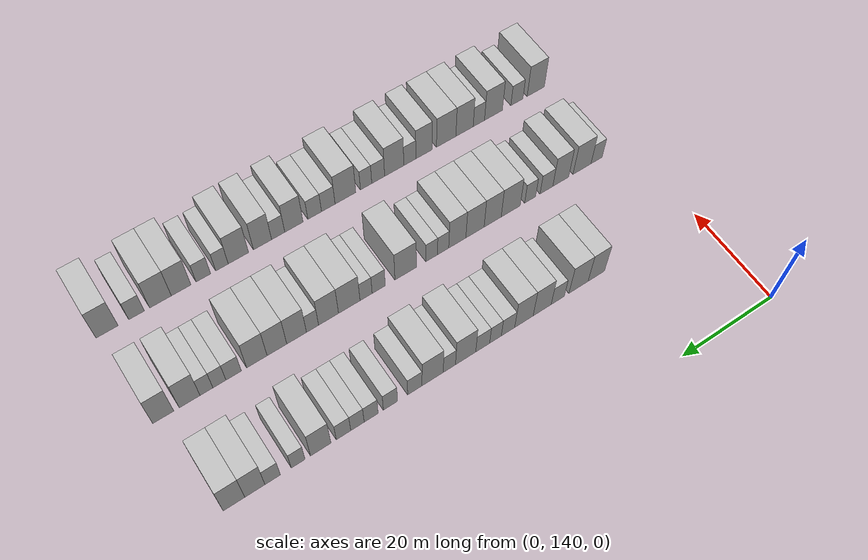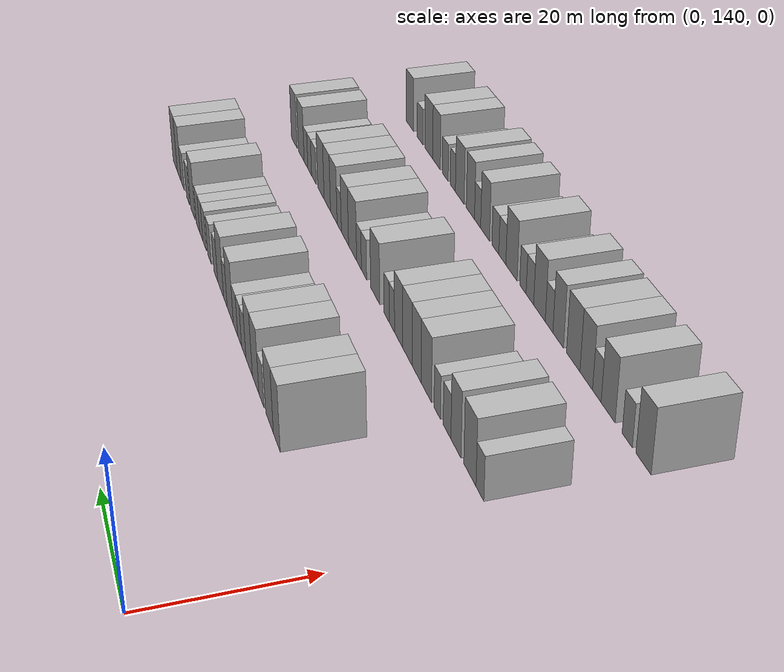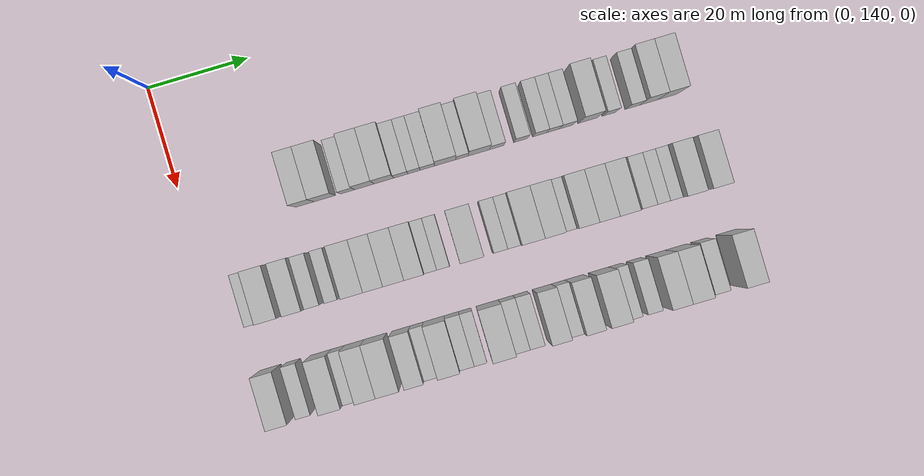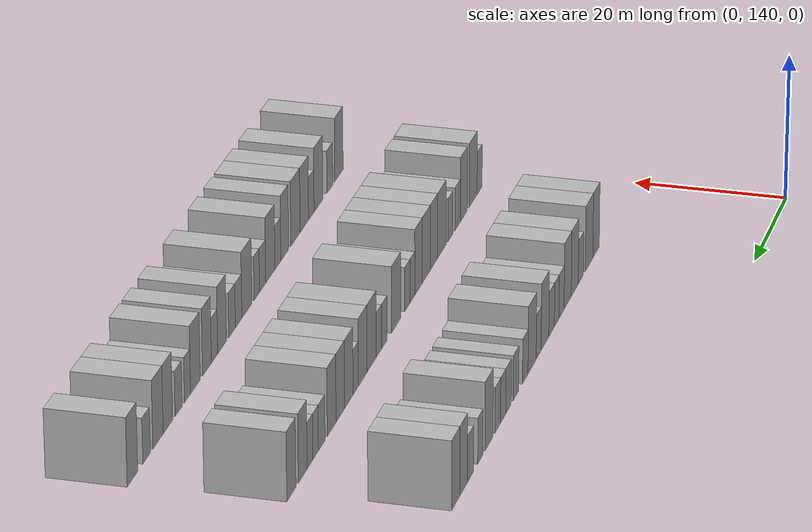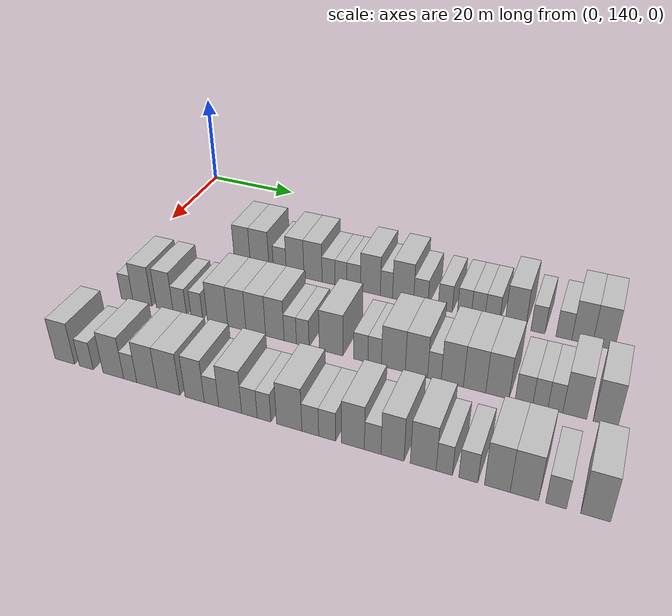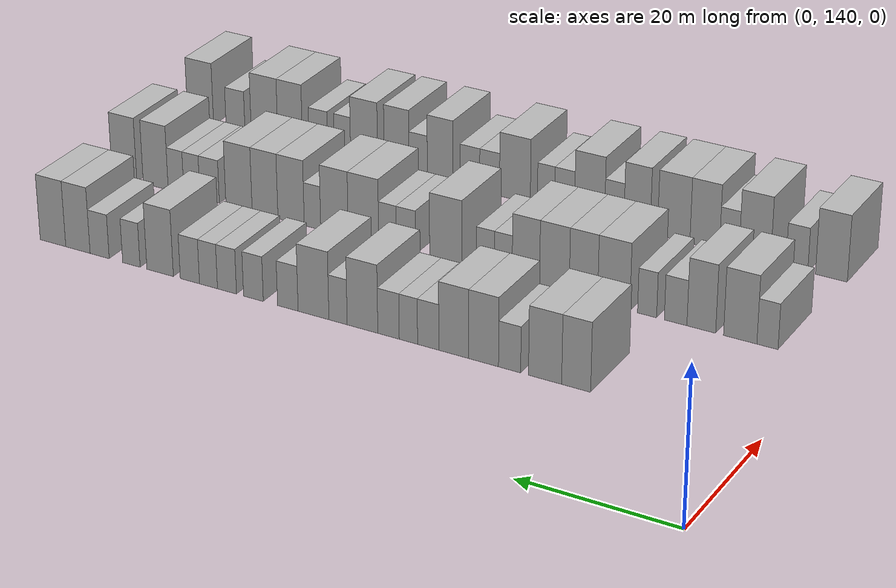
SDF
<sdf version="1.6">
 <world name="default">
  <model name="building_96">
   <static>1</static>
   <pose>25.0000 162.6394 0 0.000000 0.000000 0.000000</pose>
   <link name="link">
    <pose>0 0 4.50 0 0 0</pose>
    <collision name="collision"><geometry><box><size>10.0000 3.6520 9.0000</size></box></geometry></collision>
    <visual name="visual">
     <cast_shadows>0</cast_shadows>
     <geometry><box><size>10.0000 3.6520 9.0000</size></box></geometry>
     <material>
      <script>
       <uri>model://HANNAS_wall/materials/scripts</uri>
       <uri>model://HANNAS_wall/materials/textures</uri>
       <name>vrc/HANNAS_wall</name>
      </script>
     </material>
    </visual>
   </link>
  </model>
  <model name="building_97">
   <static>1</static>
   <pose>25.0000 166.5717 0 0.000000 0.000000 0.000000</pose>
   <link name="link">
    <pose>0 0 4.50 0 0 0</pose>
    <collision name="collision"><geometry><box><size>10.0000 4.2125 9.0000</size></box></geometry></collision>
    <visual name="visual">
     <cast_shadows>0</cast_shadows>
     <geometry><box><size>10.0000 4.2125 9.0000</size></box></geometry>
     <material>
      <script>
       <uri>model://HANNAS_wall/materials/scripts</uri>
       <uri>model://HANNAS_wall/materials/textures</uri>
       <name>vrc/HANNAS_wall</name>
      </script>
     </material>
    </visual>
   </link>
  </model>
  <model name="building_98">
   <static>1</static>
   <pose>25.0000 171.1045 0 0.000000 0.000000 0.000000</pose>
   <link name="link">
    <pose>0 0 3.00 0 0 0</pose>
    <collision name="collision"><geometry><box><size>10.0000 2.8531 6.0000</size></box></geometry></collision>
    <visual name="visual">
     <cast_shadows>0</cast_shadows>
     <geometry><box><size>10.0000 2.8531 6.0000</size></box></geometry>
     <material>
      <script>
       <uri>model://HANNAS_wall/materials/scripts</uri>
       <uri>model://HANNAS_wall/materials/textures</uri>
       <name>vrc/HANNAS_wall</name>
      </script>
     </material>
    </visual>
   </link>
  </model>
  <model name="building_99">
   <static>1</static>
   <pose>25.0000 174.4655 0 0.000000 0.000000 0.000000</pose>
   <link name="link">
    <pose>0 0 4.50 0 0 0</pose>
    <collision name="collision"><geometry><box><size>10.0000 3.8689 9.0000</size></box></geometry></collision>
    <visual name="visual">
     <cast_shadows>0</cast_shadows>
     <geometry><box><size>10.0000 3.8689 9.0000</size></box></geometry>
     <material>
      <script>
       <uri>model://HANNAS_wall/materials/scripts</uri>
       <uri>model://HANNAS_wall/materials/textures</uri>
       <name>vrc/HANNAS_wall</name>
      </script>
     </material>
    </visual>
   </link>
  </model>
  <model name="building_100">
   <static>1</static>
   <pose>25.0000 178.3606 0 0.000000 0.000000 0.000000</pose>
   <link name="link">
    <pose>0 0 4.50 0 0 0</pose>
    <collision name="collision"><geometry><box><size>10.0000 3.9213 9.0000</size></box></geometry></collision>
    <visual name="visual">
     <cast_shadows>0</cast_shadows>
     <geometry><box><size>10.0000 3.9213 9.0000</size></box></geometry>
     <material>
      <script>
       <uri>model://HANNAS_wall/materials/scripts</uri>
       <uri>model://HANNAS_wall/materials/textures</uri>
       <name>vrc/HANNAS_wall</name>
      </script>
     </material>
    </visual>
   </link>
  </model>
  <model name="building_101">
   <static>1</static>
   <pose>25.0000 181.7256 0 0.000000 0.000000 0.000000</pose>
   <link name="link">
    <pose>0 0 3.00 0 0 0</pose>
    <collision name="collision"><geometry><box><size>10.0000 2.8085 6.0000</size></box></geometry></collision>
    <visual name="visual">
     <cast_shadows>0</cast_shadows>
     <geometry><box><size>10.0000 2.8085 6.0000</size></box></geometry>
     <material>
      <script>
       <uri>model://HANNAS_wall/materials/scripts</uri>
       <uri>model://HANNAS_wall/materials/textures</uri>
       <name>vrc/HANNAS_wall</name>
      </script>
     </material>
    </visual>
   </link>
  </model>
  <model name="building_102">
   <static>1</static>
   <pose>25.0000 184.3466 0 0.000000 0.000000 0.000000</pose>
   <link name="link">
    <pose>0 0 3.00 0 0 0</pose>
    <collision name="collision"><geometry><box><size>10.0000 2.4336 6.0000</size></box></geometry></collision>
    <visual name="visual">
     <cast_shadows>0</cast_shadows>
     <geometry><box><size>10.0000 2.4336 6.0000</size></box></geometry>
     <material>
      <script>
       <uri>model://HANNAS_wall/materials/scripts</uri>
       <uri>model://HANNAS_wall/materials/textures</uri>
       <name>vrc/HANNAS_wall</name>
      </script>
     </material>
    </visual>
   </link>
  </model>
  <model name="building_103">
   <static>1</static>
   <pose>25.0000 187.0043 0 0.000000 0.000000 0.000000</pose>
   <link name="link">
    <pose>0 0 3.00 0 0 0</pose>
    <collision name="collision"><geometry><box><size>10.0000 2.8817 6.0000</size></box></geometry></collision>
    <visual name="visual">
     <cast_shadows>0</cast_shadows>
     <geometry><box><size>10.0000 2.8817 6.0000</size></box></geometry>
     <material>
      <script>
       <uri>model://HANNAS_wall/materials/scripts</uri>
       <uri>model://HANNAS_wall/materials/textures</uri>
       <name>vrc/HANNAS_wall</name>
      </script>
     </material>
    </visual>
   </link>
  </model>
  <model name="building_104">
   <static>1</static>
   <pose>25.0000 190.5175 0 0.000000 0.000000 0.000000</pose>
   <link name="link">
    <pose>0 0 4.50 0 0 0</pose>
    <collision name="collision"><geometry><box><size>10.0000 4.1447 9.0000</size></box></geometry></collision>
    <visual name="visual">
     <cast_shadows>0</cast_shadows>
     <geometry><box><size>10.0000 4.1447 9.0000</size></box></geometry>
     <material>
      <script>
       <uri>model://HANNAS_wall/materials/scripts</uri>
       <uri>model://HANNAS_wall/materials/textures</uri>
       <name>vrc/HANNAS_wall</name>
      </script>
     </material>
    </visual>
   </link>
  </model>
  <model name="building_105">
   <static>1</static>
   <pose>25.0000 193.8384 0 0.000000 0.000000 0.000000</pose>
   <link name="link">
    <pose>0 0 3.00 0 0 0</pose>
    <collision name="collision"><geometry><box><size>10.0000 2.4971 6.0000</size></box></geometry></collision>
    <visual name="visual">
     <cast_shadows>0</cast_shadows>
     <geometry><box><size>10.0000 2.4971 6.0000</size></box></geometry>
     <material>
      <script>
       <uri>model://HANNAS_wall/materials/scripts</uri>
       <uri>model://HANNAS_wall/materials/textures</uri>
       <name>vrc/HANNAS_wall</name>
      </script>
     </material>
    </visual>
   </link>
  </model>
  <model name="building_106">
   <static>1</static>
   <pose>25.0000 197.2086 0 0.000000 0.000000 0.000000</pose>
   <link name="link">
    <pose>0 0 4.50 0 0 0</pose>
    <collision name="collision"><geometry><box><size>10.0000 4.2434 9.0000</size></box></geometry></collision>
    <visual name="visual">
     <cast_shadows>0</cast_shadows>
     <geometry><box><size>10.0000 4.2434 9.0000</size></box></geometry>
     <material>
      <script>
       <uri>model://HANNAS_wall/materials/scripts</uri>
       <uri>model://HANNAS_wall/materials/textures</uri>
       <name>vrc/HANNAS_wall</name>
      </script>
     </material>
    </visual>
   </link>
  </model>
  <model name="building_107">
   <static>1</static>
   <pose>25.0000 200.7598 0 0.000000 0.000000 0.000000</pose>
   <link name="link">
    <pose>0 0 3.00 0 0 0</pose>
    <collision name="collision"><geometry><box><size>10.0000 2.8590 6.0000</size></box></geometry></collision>
    <visual name="visual">
     <cast_shadows>0</cast_shadows>
     <geometry><box><size>10.0000 2.8590 6.0000</size></box></geometry>
     <material>
      <script>
       <uri>model://HANNAS_wall/materials/scripts</uri>
       <uri>model://HANNAS_wall/materials/textures</uri>
       <name>vrc/HANNAS_wall</name>
      </script>
     </material>
    </visual>
   </link>
  </model>
  <model name="building_108">
   <static>1</static>
   <pose>25.0000 205.5789 0 0.000000 0.000000 0.000000</pose>
   <link name="link">
    <pose>0 0 3.00 0 0 0</pose>
    <collision name="collision"><geometry><box><size>10.0000 2.7793 6.0000</size></box></geometry></collision>
    <visual name="visual">
     <cast_shadows>0</cast_shadows>
     <geometry><box><size>10.0000 2.7793 6.0000</size></box></geometry>
     <material>
      <script>
       <uri>model://HANNAS_wall/materials/scripts</uri>
       <uri>model://HANNAS_wall/materials/textures</uri>
       <name>vrc/HANNAS_wall</name>
      </script>
     </material>
    </visual>
   </link>
  </model>
  <model name="building_109">
   <static>1</static>
   <pose>25.0000 209.3211 0 0.000000 0.000000 0.000000</pose>
   <link name="link">
    <pose>0 0 3.00 0 0 0</pose>
    <collision name="collision"><geometry><box><size>10.0000 2.7051 6.0000</size></box></geometry></collision>
    <visual name="visual">
     <cast_shadows>0</cast_shadows>
     <geometry><box><size>10.0000 2.7051 6.0000</size></box></geometry>
     <material>
      <script>
       <uri>model://HANNAS_wall/materials/scripts</uri>
       <uri>model://HANNAS_wall/materials/textures</uri>
       <name>vrc/HANNAS_wall</name>
      </script>
     </material>
    </visual>
   </link>
  </model>
  <model name="building_110">
   <static>1</static>
   <pose>25.0000 211.9620 0 0.000000 0.000000 0.000000</pose>
   <link name="link">
    <pose>0 0 3.00 0 0 0</pose>
    <collision name="collision"><geometry><box><size>10.0000 2.5768 6.0000</size></box></geometry></collision>
    <visual name="visual">
     <cast_shadows>0</cast_shadows>
     <geometry><box><size>10.0000 2.5768 6.0000</size></box></geometry>
     <material>
      <script>
       <uri>model://HANNAS_wall/materials/scripts</uri>
       <uri>model://HANNAS_wall/materials/textures</uri>
       <name>vrc/HANNAS_wall</name>
      </script>
     </material>
    </visual>
   </link>
  </model>
  <model name="building_111">
   <static>1</static>
   <pose>25.0000 214.6335 0 0.000000 0.000000 0.000000</pose>
   <link name="link">
    <pose>0 0 3.00 0 0 0</pose>
    <collision name="collision"><geometry><box><size>10.0000 2.7661 6.0000</size></box></geometry></collision>
    <visual name="visual">
     <cast_shadows>0</cast_shadows>
     <geometry><box><size>10.0000 2.7661 6.0000</size></box></geometry>
     <material>
      <script>
       <uri>model://HANNAS_wall/materials/scripts</uri>
       <uri>model://HANNAS_wall/materials/textures</uri>
       <name>vrc/HANNAS_wall</name>
      </script>
     </material>
    </visual>
   </link>
  </model>
  <model name="building_112">
   <static>1</static>
   <pose>25.0000 218.9441 0 0.000000 0.000000 0.000000</pose>
   <link name="link">
    <pose>0 0 4.50 0 0 0</pose>
    <collision name="collision"><geometry><box><size>10.0000 3.8553 9.0000</size></box></geometry></collision>
    <visual name="visual">
     <cast_shadows>0</cast_shadows>
     <geometry><box><size>10.0000 3.8553 9.0000</size></box></geometry>
     <material>
      <script>
       <uri>model://HANNAS_wall/materials/scripts</uri>
       <uri>model://HANNAS_wall/materials/textures</uri>
       <name>vrc/HANNAS_wall</name>
      </script>
     </material>
    </visual>
   </link>
  </model>
  <model name="building_113">
   <static>1</static>
   <pose>25.0000 223.1543 0 0.000000 0.000000 0.000000</pose>
   <link name="link">
    <pose>0 0 3.00 0 0 0</pose>
    <collision name="collision"><geometry><box><size>10.0000 2.5650 6.0000</size></box></geometry></collision>
    <visual name="visual">
     <cast_shadows>0</cast_shadows>
     <geometry><box><size>10.0000 2.5650 6.0000</size></box></geometry>
     <material>
      <script>
       <uri>model://HANNAS_wall/materials/scripts</uri>
       <uri>model://HANNAS_wall/materials/textures</uri>
       <name>vrc/HANNAS_wall</name>
      </script>
     </material>
    </visual>
   </link>
  </model>
  <model name="building_114">
   <static>1</static>
   <pose>25.0000 227.8558 0 0.000000 0.000000 0.000000</pose>
   <link name="link">
    <pose>0 0 3.00 0 0 0</pose>
    <collision name="collision"><geometry><box><size>10.0000 2.8379 6.0000</size></box></geometry></collision>
    <visual name="visual">
     <cast_shadows>0</cast_shadows>
     <geometry><box><size>10.0000 2.8379 6.0000</size></box></geometry>
     <material>
      <script>
       <uri>model://HANNAS_wall/materials/scripts</uri>
       <uri>model://HANNAS_wall/materials/textures</uri>
       <name>vrc/HANNAS_wall</name>
      </script>
     </material>
    </visual>
   </link>
  </model>
  <model name="building_115">
   <static>1</static>
   <pose>25.0000 231.1045 0 0.000000 0.000000 0.000000</pose>
   <link name="link">
    <pose>0 0 4.50 0 0 0</pose>
    <collision name="collision"><geometry><box><size>10.0000 3.6596 9.0000</size></box></geometry></collision>
    <visual name="visual">
     <cast_shadows>0</cast_shadows>
     <geometry><box><size>10.0000 3.6596 9.0000</size></box></geometry>
     <material>
      <script>
       <uri>model://HANNAS_wall/materials/scripts</uri>
       <uri>model://HANNAS_wall/materials/textures</uri>
       <name>vrc/HANNAS_wall</name>
      </script>
     </material>
    </visual>
   </link>
  </model>
  <model name="building_116">
   <static>1</static>
   <pose>25.0000 234.8668 0 0.000000 0.000000 0.000000</pose>
   <link name="link">
    <pose>0 0 4.50 0 0 0</pose>
    <collision name="collision"><geometry><box><size>10.0000 3.8649 9.0000</size></box></geometry></collision>
    <visual name="visual">
     <cast_shadows>0</cast_shadows>
     <geometry><box><size>10.0000 3.8649 9.0000</size></box></geometry>
     <material>
      <script>
       <uri>model://HANNAS_wall/materials/scripts</uri>
       <uri>model://HANNAS_wall/materials/textures</uri>
       <name>vrc/HANNAS_wall</name>
      </script>
     </material>
    </visual>
   </link>
  </model>
  <model name="building_208">
   <static>1</static>
   <pose>44.0000 147.5408 0 0.000000 0.000000 0.000000</pose>
   <link name="link">
    <pose>0 0 3.00 0 0 0</pose>
    <collision name="collision"><geometry><box><size>10.0000 2.6449 6.0000</size></box></geometry></collision>
    <visual name="visual">
     <cast_shadows>0</cast_shadows>
     <geometry><box><size>10.0000 2.6449 6.0000</size></box></geometry>
     <material>
      <script>
       <uri>model://HANNAS_wall/materials/scripts</uri>
       <uri>model://HANNAS_wall/materials/textures</uri>
       <name>vrc/HANNAS_wall</name>
      </script>
     </material>
    </visual>
   </link>
  </model>
  <model name="building_209">
   <static>1</static>
   <pose>44.0000 150.9653 0 0.000000 0.000000 0.000000</pose>
   <link name="link">
    <pose>0 0 4.50 0 0 0</pose>
    <collision name="collision"><geometry><box><size>10.0000 4.2041 9.0000</size></box></geometry></collision>
    <visual name="visual">
     <cast_shadows>0</cast_shadows>
     <geometry><box><size>10.0000 4.2041 9.0000</size></box></geometry>
     <material>
      <script>
       <uri>model://HANNAS_wall/materials/scripts</uri>
       <uri>model://HANNAS_wall/materials/textures</uri>
       <name>vrc/HANNAS_wall</name>
      </script>
     </material>
    </visual>
   </link>
  </model>
  <model name="building_210">
   <static>1</static>
   <pose>44.0000 155.9043 0 0.000000 0.000000 0.000000</pose>
   <link name="link">
    <pose>0 0 4.50 0 0 0</pose>
    <collision name="collision"><geometry><box><size>10.0000 3.6739 9.0000</size></box></geometry></collision>
    <visual name="visual">
     <cast_shadows>0</cast_shadows>
     <geometry><box><size>10.0000 3.6739 9.0000</size></box></geometry>
     <material>
      <script>
       <uri>model://HANNAS_wall/materials/scripts</uri>
       <uri>model://HANNAS_wall/materials/textures</uri>
       <name>vrc/HANNAS_wall</name>
      </script>
     </material>
    </visual>
   </link>
  </model>
  <model name="building_211">
   <static>1</static>
   <pose>44.0000 159.1957 0 0.000000 0.000000 0.000000</pose>
   <link name="link">
    <pose>0 0 3.00 0 0 0</pose>
    <collision name="collision"><geometry><box><size>10.0000 2.9090 6.0000</size></box></geometry></collision>
    <visual name="visual">
     <cast_shadows>0</cast_shadows>
     <geometry><box><size>10.0000 2.9090 6.0000</size></box></geometry>
     <material>
      <script>
       <uri>model://HANNAS_wall/materials/scripts</uri>
       <uri>model://HANNAS_wall/materials/textures</uri>
       <name>vrc/HANNAS_wall</name>
      </script>
     </material>
    </visual>
   </link>
  </model>
  <model name="building_212">
   <static>1</static>
   <pose>44.0000 162.8904 0 0.000000 0.000000 0.000000</pose>
   <link name="link">
    <pose>0 0 3.00 0 0 0</pose>
    <collision name="collision"><geometry><box><size>10.0000 2.4805 6.0000</size></box></geometry></collision>
    <visual name="visual">
     <cast_shadows>0</cast_shadows>
     <geometry><box><size>10.0000 2.4805 6.0000</size></box></geometry>
     <material>
      <script>
       <uri>model://HANNAS_wall/materials/scripts</uri>
       <uri>model://HANNAS_wall/materials/textures</uri>
       <name>vrc/HANNAS_wall</name>
      </script>
     </material>
    </visual>
   </link>
  </model>
  <model name="building_213">
   <static>1</static>
   <pose>44.0000 167.2576 0 0.000000 0.000000 0.000000</pose>
   <link name="link">
    <pose>0 0 4.50 0 0 0</pose>
    <collision name="collision"><geometry><box><size>10.0000 4.2539 9.0000</size></box></geometry></collision>
    <visual name="visual">
     <cast_shadows>0</cast_shadows>
     <geometry><box><size>10.0000 4.2539 9.0000</size></box></geometry>
     <material>
      <script>
       <uri>model://HANNAS_wall/materials/scripts</uri>
       <uri>model://HANNAS_wall/materials/textures</uri>
       <name>vrc/HANNAS_wall</name>
      </script>
     </material>
    </visual>
   </link>
  </model>
  <model name="building_214">
   <static>1</static>
   <pose>44.0000 171.2735 0 0.000000 0.000000 0.000000</pose>
   <link name="link">
    <pose>0 0 4.50 0 0 0</pose>
    <collision name="collision"><geometry><box><size>10.0000 3.7778 9.0000</size></box></geometry></collision>
    <visual name="visual">
     <cast_shadows>0</cast_shadows>
     <geometry><box><size>10.0000 3.7778 9.0000</size></box></geometry>
     <material>
      <script>
       <uri>model://HANNAS_wall/materials/scripts</uri>
       <uri>model://HANNAS_wall/materials/textures</uri>
       <name>vrc/HANNAS_wall</name>
      </script>
     </material>
    </visual>
   </link>
  </model>
  <model name="building_215">
   <static>1</static>
   <pose>44.0000 175.1547 0 0.000000 0.000000 0.000000</pose>
   <link name="link">
    <pose>0 0 4.50 0 0 0</pose>
    <collision name="collision"><geometry><box><size>10.0000 3.9847 9.0000</size></box></geometry></collision>
    <visual name="visual">
     <cast_shadows>0</cast_shadows>
     <geometry><box><size>10.0000 3.9847 9.0000</size></box></geometry>
     <material>
      <script>
       <uri>model://HANNAS_wall/materials/scripts</uri>
       <uri>model://HANNAS_wall/materials/textures</uri>
       <name>vrc/HANNAS_wall</name>
      </script>
     </material>
    </visual>
   </link>
  </model>
  <model name="building_216">
   <static>1</static>
   <pose>44.0000 179.0028 0 0.000000 0.000000 0.000000</pose>
   <link name="link">
    <pose>0 0 4.50 0 0 0</pose>
    <collision name="collision"><geometry><box><size>10.0000 3.7114 9.0000</size></box></geometry></collision>
    <visual name="visual">
     <cast_shadows>0</cast_shadows>
     <geometry><box><size>10.0000 3.7114 9.0000</size></box></geometry>
     <material>
      <script>
       <uri>model://HANNAS_wall/materials/scripts</uri>
       <uri>model://HANNAS_wall/materials/textures</uri>
       <name>vrc/HANNAS_wall</name>
      </script>
     </material>
    </visual>
   </link>
  </model>
  <model name="building_217">
   <static>1</static>
   <pose>44.0000 182.0700 0 0.000000 0.000000 0.000000</pose>
   <link name="link">
    <pose>0 0 3.00 0 0 0</pose>
    <collision name="collision"><geometry><box><size>10.0000 2.4230 6.0000</size></box></geometry></collision>
    <visual name="visual">
     <cast_shadows>0</cast_shadows>
     <geometry><box><size>10.0000 2.4230 6.0000</size></box></geometry>
     <material>
      <script>
       <uri>model://HANNAS_wall/materials/scripts</uri>
       <uri>model://HANNAS_wall/materials/textures</uri>
       <name>vrc/HANNAS_wall</name>
      </script>
     </material>
    </visual>
   </link>
  </model>
  <model name="building_218">
   <static>1</static>
   <pose>44.0000 184.5172 0 0.000000 0.000000 0.000000</pose>
   <link name="link">
    <pose>0 0 3.00 0 0 0</pose>
    <collision name="collision"><geometry><box><size>10.0000 2.4714 6.0000</size></box></geometry></collision>
    <visual name="visual">
     <cast_shadows>0</cast_shadows>
     <geometry><box><size>10.0000 2.4714 6.0000</size></box></geometry>
     <material>
      <script>
       <uri>model://HANNAS_wall/materials/scripts</uri>
       <uri>model://HANNAS_wall/materials/textures</uri>
       <name>vrc/HANNAS_wall</name>
      </script>
     </material>
    </visual>
   </link>
  </model>
  <model name="building_219">
   <static>1</static>
   <pose>44.0000 190.0004 0 0.000000 0.000000 0.000000</pose>
   <link name="link">
    <pose>0 0 4.50 0 0 0</pose>
    <collision name="collision"><geometry><box><size>10.0000 4.4950 9.0000</size></box></geometry></collision>
    <visual name="visual">
     <cast_shadows>0</cast_shadows>
     <geometry><box><size>10.0000 4.4950 9.0000</size></box></geometry>
     <material>
      <script>
       <uri>model://HANNAS_wall/materials/scripts</uri>
       <uri>model://HANNAS_wall/materials/textures</uri>
       <name>vrc/HANNAS_wall</name>
      </script>
     </material>
    </visual>
   </link>
  </model>
  <model name="building_220">
   <static>1</static>
   <pose>44.0000 195.6050 0 0.000000 0.000000 0.000000</pose>
   <link name="link">
    <pose>0 0 3.00 0 0 0</pose>
    <collision name="collision"><geometry><box><size>10.0000 2.7142 6.0000</size></box></geometry></collision>
    <visual name="visual">
     <cast_shadows>0</cast_shadows>
     <geometry><box><size>10.0000 2.7142 6.0000</size></box></geometry>
     <material>
      <script>
       <uri>model://HANNAS_wall/materials/scripts</uri>
       <uri>model://HANNAS_wall/materials/textures</uri>
       <name>vrc/HANNAS_wall</name>
      </script>
     </material>
    </visual>
   </link>
  </model>
  <model name="building_221">
   <static>1</static>
   <pose>44.0000 198.2042 0 0.000000 0.000000 0.000000</pose>
   <link name="link">
    <pose>0 0 3.00 0 0 0</pose>
    <collision name="collision"><geometry><box><size>10.0000 2.4843 6.0000</size></box></geometry></collision>
    <visual name="visual">
     <cast_shadows>0</cast_shadows>
     <geometry><box><size>10.0000 2.4843 6.0000</size></box></geometry>
     <material>
      <script>
       <uri>model://HANNAS_wall/materials/scripts</uri>
       <uri>model://HANNAS_wall/materials/textures</uri>
       <name>vrc/HANNAS_wall</name>
      </script>
     </material>
    </visual>
   </link>
  </model>
  <model name="building_222">
   <static>1</static>
   <pose>44.0000 201.6259 0 0.000000 0.000000 0.000000</pose>
   <link name="link">
    <pose>0 0 4.50 0 0 0</pose>
    <collision name="collision"><geometry><box><size>10.0000 4.3592 9.0000</size></box></geometry></collision>
    <visual name="visual">
     <cast_shadows>0</cast_shadows>
     <geometry><box><size>10.0000 4.3592 9.0000</size></box></geometry>
     <material>
      <script>
       <uri>model://HANNAS_wall/materials/scripts</uri>
       <uri>model://HANNAS_wall/materials/textures</uri>
       <name>vrc/HANNAS_wall</name>
      </script>
     </material>
    </visual>
   </link>
  </model>
  <model name="building_223">
   <static>1</static>
   <pose>44.0000 205.8047 0 0.000000 0.000000 0.000000</pose>
   <link name="link">
    <pose>0 0 4.50 0 0 0</pose>
    <collision name="collision"><geometry><box><size>10.0000 3.9984 9.0000</size></box></geometry></collision>
    <visual name="visual">
     <cast_shadows>0</cast_shadows>
     <geometry><box><size>10.0000 3.9984 9.0000</size></box></geometry>
     <material>
      <script>
       <uri>model://HANNAS_wall/materials/scripts</uri>
       <uri>model://HANNAS_wall/materials/textures</uri>
       <name>vrc/HANNAS_wall</name>
      </script>
     </material>
    </visual>
   </link>
  </model>
  <model name="building_224">
   <static>1</static>
   <pose>44.0000 209.0054 0 0.000000 0.000000 0.000000</pose>
   <link name="link">
    <pose>0 0 3.00 0 0 0</pose>
    <collision name="collision"><geometry><box><size>10.0000 2.4032 6.0000</size></box></geometry></collision>
    <visual name="visual">
     <cast_shadows>0</cast_shadows>
     <geometry><box><size>10.0000 2.4032 6.0000</size></box></geometry>
     <material>
      <script>
       <uri>model://HANNAS_wall/materials/scripts</uri>
       <uri>model://HANNAS_wall/materials/textures</uri>
       <name>vrc/HANNAS_wall</name>
      </script>
     </material>
    </visual>
   </link>
  </model>
  <model name="building_225">
   <static>1</static>
   <pose>44.0000 212.1458 0 0.000000 0.000000 0.000000</pose>
   <link name="link">
    <pose>0 0 4.50 0 0 0</pose>
    <collision name="collision"><geometry><box><size>10.0000 3.8777 9.0000</size></box></geometry></collision>
    <visual name="visual">
     <cast_shadows>0</cast_shadows>
     <geometry><box><size>10.0000 3.8777 9.0000</size></box></geometry>
     <material>
      <script>
       <uri>model://HANNAS_wall/materials/scripts</uri>
       <uri>model://HANNAS_wall/materials/textures</uri>
       <name>vrc/HANNAS_wall</name>
      </script>
     </material>
    </visual>
   </link>
  </model>
  <model name="building_226">
   <static>1</static>
   <pose>44.0000 216.0021 0 0.000000 0.000000 0.000000</pose>
   <link name="link">
    <pose>0 0 4.50 0 0 0</pose>
    <collision name="collision"><geometry><box><size>10.0000 3.8350 9.0000</size></box></geometry></collision>
    <visual name="visual">
     <cast_shadows>0</cast_shadows>
     <geometry><box><size>10.0000 3.8350 9.0000</size></box></geometry>
     <material>
      <script>
       <uri>model://HANNAS_wall/materials/scripts</uri>
       <uri>model://HANNAS_wall/materials/textures</uri>
       <name>vrc/HANNAS_wall</name>
      </script>
     </material>
    </visual>
   </link>
  </model>
  <model name="building_227">
   <static>1</static>
   <pose>44.0000 219.8885 0 0.000000 0.000000 0.000000</pose>
   <link name="link">
    <pose>0 0 4.50 0 0 0</pose>
    <collision name="collision"><geometry><box><size>10.0000 3.9378 9.0000</size></box></geometry></collision>
    <visual name="visual">
     <cast_shadows>0</cast_shadows>
     <geometry><box><size>10.0000 3.9378 9.0000</size></box></geometry>
     <material>
      <script>
       <uri>model://HANNAS_wall/materials/scripts</uri>
       <uri>model://HANNAS_wall/materials/textures</uri>
       <name>vrc/HANNAS_wall</name>
      </script>
     </material>
    </visual>
   </link>
  </model>
  <model name="building_228">
   <static>1</static>
   <pose>44.0000 224.3239 0 0.000000 0.000000 0.000000</pose>
   <link name="link">
    <pose>0 0 3.00 0 0 0</pose>
    <collision name="collision"><geometry><box><size>10.0000 2.9329 6.0000</size></box></geometry></collision>
    <visual name="visual">
     <cast_shadows>0</cast_shadows>
     <geometry><box><size>10.0000 2.9329 6.0000</size></box></geometry>
     <material>
      <script>
       <uri>model://HANNAS_wall/materials/scripts</uri>
       <uri>model://HANNAS_wall/materials/textures</uri>
       <name>vrc/HANNAS_wall</name>
      </script>
     </material>
    </visual>
   </link>
  </model>
  <model name="building_229">
   <static>1</static>
   <pose>44.0000 227.0180 0 0.000000 0.000000 0.000000</pose>
   <link name="link">
    <pose>0 0 3.00 0 0 0</pose>
    <collision name="collision"><geometry><box><size>10.0000 2.4553 6.0000</size></box></geometry></collision>
    <visual name="visual">
     <cast_shadows>0</cast_shadows>
     <geometry><box><size>10.0000 2.4553 6.0000</size></box></geometry>
     <material>
      <script>
       <uri>model://HANNAS_wall/materials/scripts</uri>
       <uri>model://HANNAS_wall/materials/textures</uri>
       <name>vrc/HANNAS_wall</name>
      </script>
     </material>
    </visual>
   </link>
  </model>
  <model name="building_230">
   <static>1</static>
   <pose>44.0000 229.4484 0 0.000000 0.000000 0.000000</pose>
   <link name="link">
    <pose>0 0 3.00 0 0 0</pose>
    <collision name="collision"><geometry><box><size>10.0000 2.4055 6.0000</size></box></geometry></collision>
    <visual name="visual">
     <cast_shadows>0</cast_shadows>
     <geometry><box><size>10.0000 2.4055 6.0000</size></box></geometry>
     <material>
      <script>
       <uri>model://HANNAS_wall/materials/scripts</uri>
       <uri>model://HANNAS_wall/materials/textures</uri>
       <name>vrc/HANNAS_wall</name>
      </script>
     </material>
    </visual>
   </link>
  </model>
  <model name="building_231">
   <static>1</static>
   <pose>44.0000 232.5806 0 0.000000 0.000000 0.000000</pose>
   <link name="link">
    <pose>0 0 4.50 0 0 0</pose>
    <collision name="collision"><geometry><box><size>10.0000 3.8588 9.0000</size></box></geometry></collision>
    <visual name="visual">
     <cast_shadows>0</cast_shadows>
     <geometry><box><size>10.0000 3.8588 9.0000</size></box></geometry>
     <material>
      <script>
       <uri>model://HANNAS_wall/materials/scripts</uri>
       <uri>model://HANNAS_wall/materials/textures</uri>
       <name>vrc/HANNAS_wall</name>
      </script>
     </material>
    </visual>
   </link>
  </model>
  <model name="building_232">
   <static>1</static>
   <pose>44.0000 237.4387 0 0.000000 0.000000 0.000000</pose>
   <link name="link">
    <pose>0 0 4.50 0 0 0</pose>
    <collision name="collision"><geometry><box><size>10.0000 3.8574 9.0000</size></box></geometry></collision>
    <visual name="visual">
     <cast_shadows>0</cast_shadows>
     <geometry><box><size>10.0000 3.8574 9.0000</size></box></geometry>
     <material>
      <script>
       <uri>model://HANNAS_wall/materials/scripts</uri>
       <uri>model://HANNAS_wall/materials/textures</uri>
       <name>vrc/HANNAS_wall</name>
      </script>
     </material>
    </visual>
   </link>
  </model>
  <model name="building_327">
   <static>1</static>
   <pose>63.0000 147.3995 0 0.000000 0.000000 0.000000</pose>
   <link name="link">
    <pose>0 0 4.50 0 0 0</pose>
    <collision name="collision"><geometry><box><size>10.0000 4.1253 9.0000</size></box></geometry></collision>
    <visual name="visual">
     <cast_shadows>0</cast_shadows>
     <geometry><box><size>10.0000 4.1253 9.0000</size></box></geometry>
     <material>
      <script>
       <uri>model://HANNAS_wall/materials/scripts</uri>
       <uri>model://HANNAS_wall/materials/textures</uri>
       <name>vrc/HANNAS_wall</name>
      </script>
     </material>
    </visual>
   </link>
  </model>
  <model name="building_328">
   <static>1</static>
   <pose>63.0000 151.8946 0 0.000000 0.000000 0.000000</pose>
   <link name="link">
    <pose>0 0 3.00 0 0 0</pose>
    <collision name="collision"><geometry><box><size>10.0000 2.8649 6.0000</size></box></geometry></collision>
    <visual name="visual">
     <cast_shadows>0</cast_shadows>
     <geometry><box><size>10.0000 2.8649 6.0000</size></box></geometry>
     <material>
      <script>
       <uri>model://HANNAS_wall/materials/scripts</uri>
       <uri>model://HANNAS_wall/materials/textures</uri>
       <name>vrc/HANNAS_wall</name>
      </script>
     </material>
    </visual>
   </link>
  </model>
  <model name="building_329">
   <static>1</static>
   <pose>63.0000 157.4230 0 0.000000 0.000000 0.000000</pose>
   <link name="link">
    <pose>0 0 4.50 0 0 0</pose>
    <collision name="collision"><geometry><box><size>10.0000 4.1920 9.0000</size></box></geometry></collision>
    <visual name="visual">
     <cast_shadows>0</cast_shadows>
     <geometry><box><size>10.0000 4.1920 9.0000</size></box></geometry>
     <material>
      <script>
       <uri>model://HANNAS_wall/materials/scripts</uri>
       <uri>model://HANNAS_wall/materials/textures</uri>
       <name>vrc/HANNAS_wall</name>
      </script>
     </material>
    </visual>
   </link>
  </model>
  <model name="building_330">
   <static>1</static>
   <pose>63.0000 160.8275 0 0.000000 0.000000 0.000000</pose>
   <link name="link">
    <pose>0 0 3.00 0 0 0</pose>
    <collision name="collision"><geometry><box><size>10.0000 2.6170 6.0000</size></box></geometry></collision>
    <visual name="visual">
     <cast_shadows>0</cast_shadows>
     <geometry><box><size>10.0000 2.6170 6.0000</size></box></geometry>
     <material>
      <script>
       <uri>model://HANNAS_wall/materials/scripts</uri>
       <uri>model://HANNAS_wall/materials/textures</uri>
       <name>vrc/HANNAS_wall</name>
      </script>
     </material>
    </visual>
   </link>
  </model>
  <model name="building_331">
   <static>1</static>
   <pose>63.0000 164.1273 0 0.000000 0.000000 0.000000</pose>
   <link name="link">
    <pose>0 0 4.50 0 0 0</pose>
    <collision name="collision"><geometry><box><size>10.0000 3.9827 9.0000</size></box></geometry></collision>
    <visual name="visual">
     <cast_shadows>0</cast_shadows>
     <geometry><box><size>10.0000 3.9827 9.0000</size></box></geometry>
     <material>
      <script>
       <uri>model://HANNAS_wall/materials/scripts</uri>
       <uri>model://HANNAS_wall/materials/textures</uri>
       <name>vrc/HANNAS_wall</name>
      </script>
     </material>
    </visual>
   </link>
  </model>
  <model name="building_332">
   <static>1</static>
   <pose>63.0000 168.3258 0 0.000000 0.000000 0.000000</pose>
   <link name="link">
    <pose>0 0 4.50 0 0 0</pose>
    <collision name="collision"><geometry><box><size>10.0000 4.4141 9.0000</size></box></geometry></collision>
    <visual name="visual">
     <cast_shadows>0</cast_shadows>
     <geometry><box><size>10.0000 4.4141 9.0000</size></box></geometry>
     <material>
      <script>
       <uri>model://HANNAS_wall/materials/scripts</uri>
       <uri>model://HANNAS_wall/materials/textures</uri>
       <name>vrc/HANNAS_wall</name>
      </script>
     </material>
    </visual>
   </link>
  </model>
  <model name="building_333">
   <static>1</static>
   <pose>63.0000 173.3518 0 0.000000 0.000000 0.000000</pose>
   <link name="link">
    <pose>0 0 4.50 0 0 0</pose>
    <collision name="collision"><geometry><box><size>10.0000 3.6380 9.0000</size></box></geometry></collision>
    <visual name="visual">
     <cast_shadows>0</cast_shadows>
     <geometry><box><size>10.0000 3.6380 9.0000</size></box></geometry>
     <material>
      <script>
       <uri>model://HANNAS_wall/materials/scripts</uri>
       <uri>model://HANNAS_wall/materials/textures</uri>
       <name>vrc/HANNAS_wall</name>
      </script>
     </material>
    </visual>
   </link>
  </model>
  <model name="building_334">
   <static>1</static>
   <pose>63.0000 176.5097 0 0.000000 0.000000 0.000000</pose>
   <link name="link">
    <pose>0 0 3.00 0 0 0</pose>
    <collision name="collision"><geometry><box><size>10.0000 2.6778 6.0000</size></box></geometry></collision>
    <visual name="visual">
     <cast_shadows>0</cast_shadows>
     <geometry><box><size>10.0000 2.6778 6.0000</size></box></geometry>
     <material>
      <script>
       <uri>model://HANNAS_wall/materials/scripts</uri>
       <uri>model://HANNAS_wall/materials/textures</uri>
       <name>vrc/HANNAS_wall</name>
      </script>
     </material>
    </visual>
   </link>
  </model>
  <model name="building_335">
   <static>1</static>
   <pose>63.0000 179.9578 0 0.000000 0.000000 0.000000</pose>
   <link name="link">
    <pose>0 0 4.50 0 0 0</pose>
    <collision name="collision"><geometry><box><size>10.0000 4.2183 9.0000</size></box></geometry></collision>
    <visual name="visual">
     <cast_shadows>0</cast_shadows>
     <geometry><box><size>10.0000 4.2183 9.0000</size></box></geometry>
     <material>
      <script>
       <uri>model://HANNAS_wall/materials/scripts</uri>
       <uri>model://HANNAS_wall/materials/textures</uri>
       <name>vrc/HANNAS_wall</name>
      </script>
     </material>
    </visual>
   </link>
  </model>
  <model name="building_336">
   <static>1</static>
   <pose>63.0000 183.4694 0 0.000000 0.000000 0.000000</pose>
   <link name="link">
    <pose>0 0 3.00 0 0 0</pose>
    <collision name="collision"><geometry><box><size>10.0000 2.8050 6.0000</size></box></geometry></collision>
    <visual name="visual">
     <cast_shadows>0</cast_shadows>
     <geometry><box><size>10.0000 2.8050 6.0000</size></box></geometry>
     <material>
      <script>
       <uri>model://HANNAS_wall/materials/scripts</uri>
       <uri>model://HANNAS_wall/materials/textures</uri>
       <name>vrc/HANNAS_wall</name>
      </script>
     </material>
    </visual>
   </link>
  </model>
  <model name="building_337">
   <static>1</static>
   <pose>63.0000 186.0986 0 0.000000 0.000000 0.000000</pose>
   <link name="link">
    <pose>0 0 3.00 0 0 0</pose>
    <collision name="collision"><geometry><box><size>10.0000 2.4535 6.0000</size></box></geometry></collision>
    <visual name="visual">
     <cast_shadows>0</cast_shadows>
     <geometry><box><size>10.0000 2.4535 6.0000</size></box></geometry>
     <material>
      <script>
       <uri>model://HANNAS_wall/materials/scripts</uri>
       <uri>model://HANNAS_wall/materials/textures</uri>
       <name>vrc/HANNAS_wall</name>
      </script>
     </material>
    </visual>
   </link>
  </model>
  <model name="building_338">
   <static>1</static>
   <pose>63.0000 190.5422 0 0.000000 0.000000 0.000000</pose>
   <link name="link">
    <pose>0 0 4.50 0 0 0</pose>
    <collision name="collision"><geometry><box><size>10.0000 4.4337 9.0000</size></box></geometry></collision>
    <visual name="visual">
     <cast_shadows>0</cast_shadows>
     <geometry><box><size>10.0000 4.4337 9.0000</size></box></geometry>
     <material>
      <script>
       <uri>model://HANNAS_wall/materials/scripts</uri>
       <uri>model://HANNAS_wall/materials/textures</uri>
       <name>vrc/HANNAS_wall</name>
      </script>
     </material>
    </visual>
   </link>
  </model>
  <model name="building_339">
   <static>1</static>
   <pose>63.0000 194.1980 0 0.000000 0.000000 0.000000</pose>
   <link name="link">
    <pose>0 0 3.00 0 0 0</pose>
    <collision name="collision"><geometry><box><size>10.0000 2.8777 6.0000</size></box></geometry></collision>
    <visual name="visual">
     <cast_shadows>0</cast_shadows>
     <geometry><box><size>10.0000 2.8777 6.0000</size></box></geometry>
     <material>
      <script>
       <uri>model://HANNAS_wall/materials/scripts</uri>
       <uri>model://HANNAS_wall/materials/textures</uri>
       <name>vrc/HANNAS_wall</name>
      </script>
     </material>
    </visual>
   </link>
  </model>
  <model name="building_340">
   <static>1</static>
   <pose>63.0000 197.0770 0 0.000000 0.000000 0.000000</pose>
   <link name="link">
    <pose>0 0 3.00 0 0 0</pose>
    <collision name="collision"><geometry><box><size>10.0000 2.8805 6.0000</size></box></geometry></collision>
    <visual name="visual">
     <cast_shadows>0</cast_shadows>
     <geometry><box><size>10.0000 2.8805 6.0000</size></box></geometry>
     <material>
      <script>
       <uri>model://HANNAS_wall/materials/scripts</uri>
       <uri>model://HANNAS_wall/materials/textures</uri>
       <name>vrc/HANNAS_wall</name>
      </script>
     </material>
    </visual>
   </link>
  </model>
  <model name="building_341">
   <static>1</static>
   <pose>63.0000 201.4163 0 0.000000 0.000000 0.000000</pose>
   <link name="link">
    <pose>0 0 4.50 0 0 0</pose>
    <collision name="collision"><geometry><box><size>10.0000 3.7981 9.0000</size></box></geometry></collision>
    <visual name="visual">
     <cast_shadows>0</cast_shadows>
     <geometry><box><size>10.0000 3.7981 9.0000</size></box></geometry>
     <material>
      <script>
       <uri>model://HANNAS_wall/materials/scripts</uri>
       <uri>model://HANNAS_wall/materials/textures</uri>
       <name>vrc/HANNAS_wall</name>
      </script>
     </material>
    </visual>
   </link>
  </model>
  <model name="building_342">
   <static>1</static>
   <pose>63.0000 204.6718 0 0.000000 0.000000 0.000000</pose>
   <link name="link">
    <pose>0 0 3.00 0 0 0</pose>
    <collision name="collision"><geometry><box><size>10.0000 2.7127 6.0000</size></box></geometry></collision>
    <visual name="visual">
     <cast_shadows>0</cast_shadows>
     <geometry><box><size>10.0000 2.7127 6.0000</size></box></geometry>
     <material>
      <script>
       <uri>model://HANNAS_wall/materials/scripts</uri>
       <uri>model://HANNAS_wall/materials/textures</uri>
       <name>vrc/HANNAS_wall</name>
      </script>
     </material>
    </visual>
   </link>
  </model>
  <model name="building_343">
   <static>1</static>
   <pose>63.0000 207.8805 0 0.000000 0.000000 0.000000</pose>
   <link name="link">
    <pose>0 0 4.50 0 0 0</pose>
    <collision name="collision"><geometry><box><size>10.0000 3.7048 9.0000</size></box></geometry></collision>
    <visual name="visual">
     <cast_shadows>0</cast_shadows>
     <geometry><box><size>10.0000 3.7048 9.0000</size></box></geometry>
     <material>
      <script>
       <uri>model://HANNAS_wall/materials/scripts</uri>
       <uri>model://HANNAS_wall/materials/textures</uri>
       <name>vrc/HANNAS_wall</name>
      </script>
     </material>
    </visual>
   </link>
  </model>
  <model name="building_344">
   <static>1</static>
   <pose>63.0000 212.7782 0 0.000000 0.000000 0.000000</pose>
   <link name="link">
    <pose>0 0 4.50 0 0 0</pose>
    <collision name="collision"><geometry><box><size>10.0000 4.0907 9.0000</size></box></geometry></collision>
    <visual name="visual">
     <cast_shadows>0</cast_shadows>
     <geometry><box><size>10.0000 4.0907 9.0000</size></box></geometry>
     <material>
      <script>
       <uri>model://HANNAS_wall/materials/scripts</uri>
       <uri>model://HANNAS_wall/materials/textures</uri>
       <name>vrc/HANNAS_wall</name>
      </script>
     </material>
    </visual>
   </link>
  </model>
  <model name="building_345">
   <static>1</static>
   <pose>63.0000 216.0727 0 0.000000 0.000000 0.000000</pose>
   <link name="link">
    <pose>0 0 3.00 0 0 0</pose>
    <collision name="collision"><geometry><box><size>10.0000 2.4982 6.0000</size></box></geometry></collision>
    <visual name="visual">
     <cast_shadows>0</cast_shadows>
     <geometry><box><size>10.0000 2.4982 6.0000</size></box></geometry>
     <material>
      <script>
       <uri>model://HANNAS_wall/materials/scripts</uri>
       <uri>model://HANNAS_wall/materials/textures</uri>
       <name>vrc/HANNAS_wall</name>
      </script>
     </material>
    </visual>
   </link>
  </model>
  <model name="building_346">
   <static>1</static>
   <pose>63.0000 219.7666 0 0.000000 0.000000 0.000000</pose>
   <link name="link">
    <pose>0 0 3.00 0 0 0</pose>
    <collision name="collision"><geometry><box><size>10.0000 2.8897 6.0000</size></box></geometry></collision>
    <visual name="visual">
     <cast_shadows>0</cast_shadows>
     <geometry><box><size>10.0000 2.8897 6.0000</size></box></geometry>
     <material>
      <script>
       <uri>model://HANNAS_wall/materials/scripts</uri>
       <uri>model://HANNAS_wall/materials/textures</uri>
       <name>vrc/HANNAS_wall</name>
      </script>
     </material>
    </visual>
   </link>
  </model>
  <model name="building_347">
   <static>1</static>
   <pose>63.0000 224.1280 0 0.000000 0.000000 0.000000</pose>
   <link name="link">
    <pose>0 0 4.50 0 0 0</pose>
    <collision name="collision"><geometry><box><size>10.0000 3.8332 9.0000</size></box></geometry></collision>
    <visual name="visual">
     <cast_shadows>0</cast_shadows>
     <geometry><box><size>10.0000 3.8332 9.0000</size></box></geometry>
     <material>
      <script>
       <uri>model://HANNAS_wall/materials/scripts</uri>
       <uri>model://HANNAS_wall/materials/textures</uri>
       <name>vrc/HANNAS_wall</name>
      </script>
     </material>
    </visual>
   </link>
  </model>
  <model name="building_348">
   <static>1</static>
   <pose>63.0000 228.1319 0 0.000000 0.000000 0.000000</pose>
   <link name="link">
    <pose>0 0 4.50 0 0 0</pose>
    <collision name="collision"><geometry><box><size>10.0000 4.1747 9.0000</size></box></geometry></collision>
    <visual name="visual">
     <cast_shadows>0</cast_shadows>
     <geometry><box><size>10.0000 4.1747 9.0000</size></box></geometry>
     <material>
      <script>
       <uri>model://HANNAS_wall/materials/scripts</uri>
       <uri>model://HANNAS_wall/materials/textures</uri>
       <name>vrc/HANNAS_wall</name>
      </script>
     </material>
    </visual>
   </link>
  </model>
  <model name="building_349">
   <static>1</static>
   <pose>63.0000 232.7159 0 0.000000 0.000000 0.000000</pose>
   <link name="link">
    <pose>0 0 3.00 0 0 0</pose>
    <collision name="collision"><geometry><box><size>10.0000 2.9932 6.0000</size></box></geometry></collision>
    <visual name="visual">
     <cast_shadows>0</cast_shadows>
     <geometry><box><size>10.0000 2.9932 6.0000</size></box></geometry>
     <material>
      <script>
       <uri>model://HANNAS_wall/materials/scripts</uri>
       <uri>model://HANNAS_wall/materials/textures</uri>
       <name>vrc/HANNAS_wall</name>
      </script>
     </material>
    </visual>
   </link>
  </model>
  <model name="building_350">
   <static>1</static>
   <pose>63.0000 238.2902 0 0.000000 0.000000 0.000000</pose>
   <link name="link">
    <pose>0 0 4.50 0 0 0</pose>
    <collision name="collision"><geometry><box><size>10.0000 4.1554 9.0000</size></box></geometry></collision>
    <visual name="visual">
     <cast_shadows>0</cast_shadows>
     <geometry><box><size>10.0000 4.1554 9.0000</size></box></geometry>
     <material>
      <script>
       <uri>model://HANNAS_wall/materials/scripts</uri>
       <uri>model://HANNAS_wall/materials/textures</uri>
       <name>vrc/HANNAS_wall</name>
      </script>
     </material>
    </visual>
   </link>
  </model>
 </world>
</sdf>
